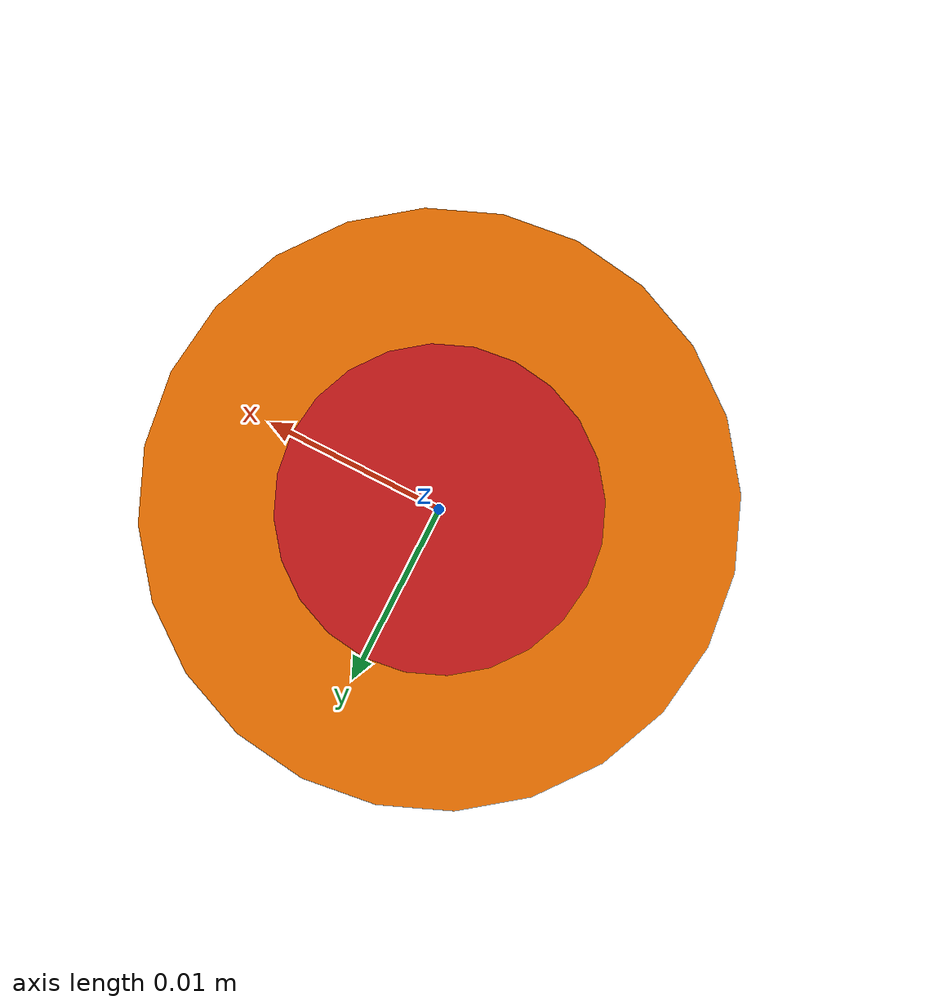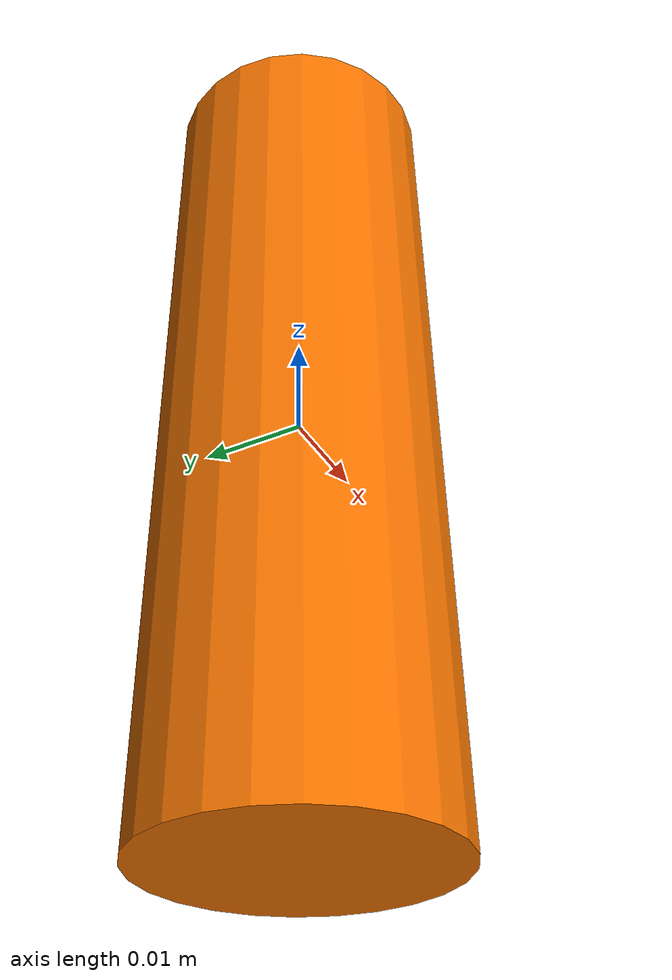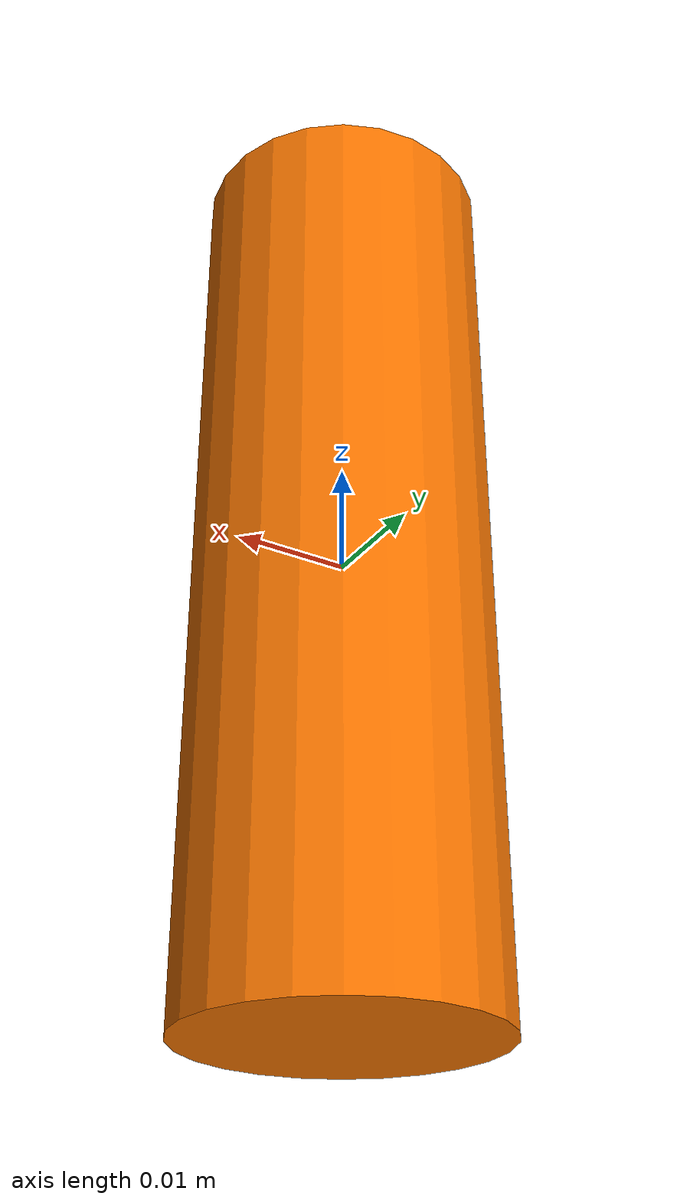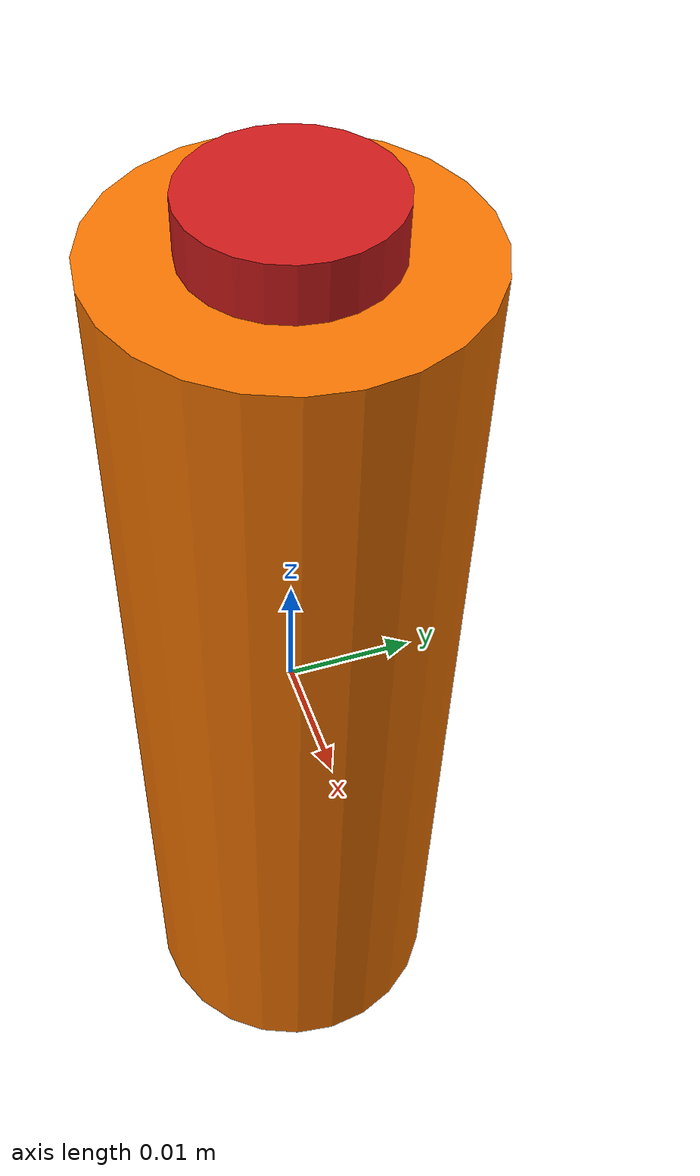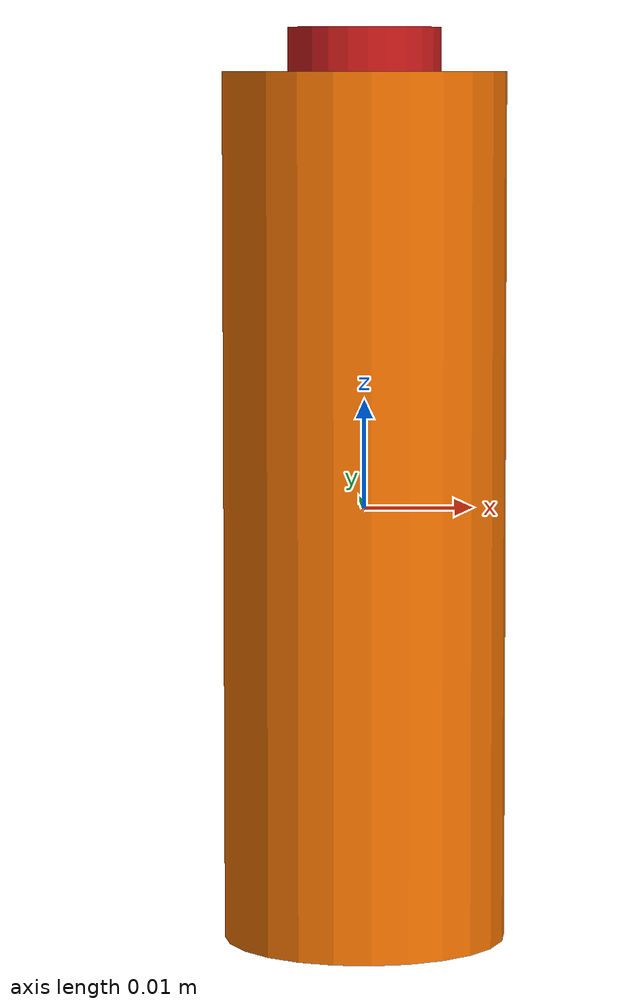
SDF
<?xml version="1.0" ?>
<sdf version="1.5">
  <model name="medicine_bottle">
    <link name="link">
      <pose>0 0 0 0 0 0</pose>
      <inertial>
        <mass>0.020</mass>
        <inertia>
          <!-- cylinder r=0.013 h=0.08: ixx=iyy=(m/12)*(3r²+h²), izz=mr²/2 -->
          <ixx>1.15e-5</ixx>
          <ixy>0</ixy><ixz>0</ixz>
          <iyy>1.15e-5</iyy>
          <iyz>0</iyz>
          <izz>1.69e-6</izz>
        </inertia>
      </inertial>
      <collision name="collision">
        <geometry>
          <cylinder><radius>0.013</radius><length>0.08</length></cylinder>
        </geometry>
        <surface>
          <contact><ode><kp>1000000</kp><kd>100</kd><max_vel>0.1</max_vel><min_depth>0.001</min_depth></ode></contact>
          <friction><ode><mu>1.0</mu><mu2>1.0</mu2></ode><torsional><coefficient>1.0</coefficient><use_patch_radius>0</use_patch_radius><surface_radius>0.013</surface_radius></torsional></friction>
        </surface>
      </collision>
      <visual name="visual">
        <geometry><cylinder><radius>0.013</radius><length>0.08</length></cylinder></geometry>
        <material><ambient>0.95 0.45 0 1</ambient><diffuse>0.95 0.45 0 1</diffuse></material>
      </visual>

      <!-- Cap: visual only, no collision — see model-level comment above. -->
      <visual name="visual_cap">
        <pose>0 0 0.038 0 0 0</pose>
        <geometry>
          <cylinder><radius>0.007</radius><length>0.012</length></cylinder>
        </geometry>
        <material><ambient>0.8 0.1 0.1 1</ambient><diffuse>0.8 0.1 0.1 1</diffuse></material>
      </visual>
    </link>
  </model>
</sdf>
